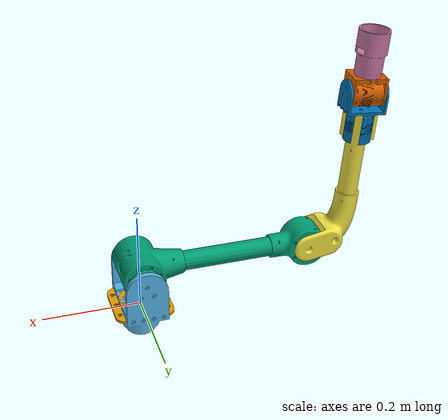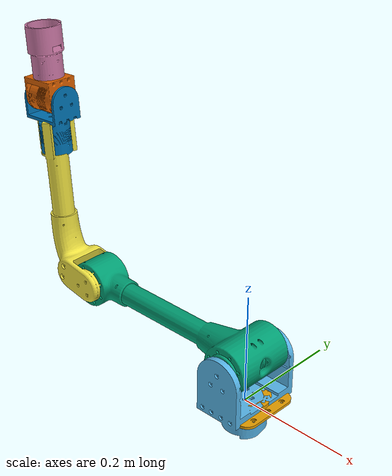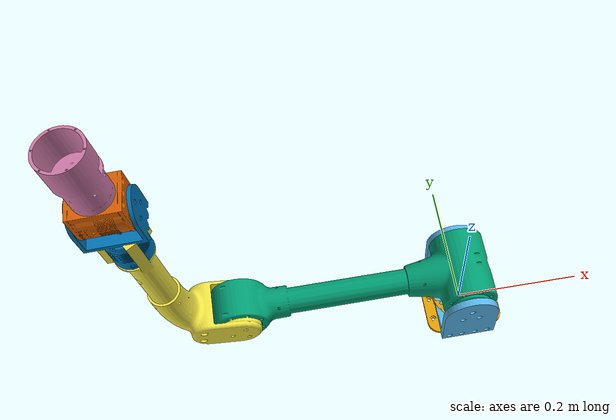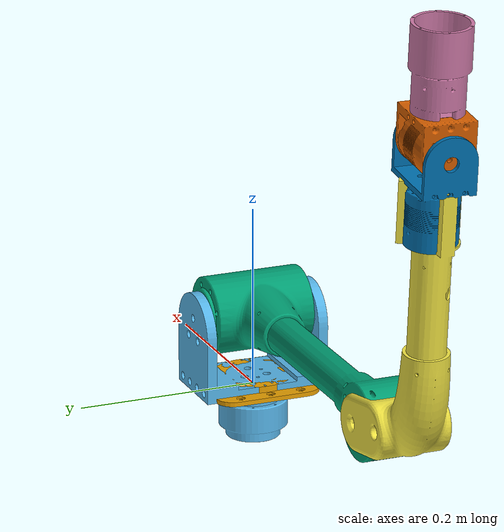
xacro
<?xml version="1.0"?>
<robot name="arm_only_clean" xmlns:xacro="http://www.ros.org/wiki/xacro">

  <link name="BASE_LINK">
    <inertial>
      <origin xyz="0 0 0.004385" rpy="0 -0 0" />
      <mass value="0.18833" />
      <inertia ixx="0.00023338" ixy="0" ixz="0" iyy="0.00023338" iyz="0" izz="0.00046295" />
    </inertial>
    <visual name="BASE_LINK_visual">
      <origin xyz="0 0 0" rpy="0 -0 0" />
      <geometry>
        <mesh filename="file://$(find arm_only_description)/meshes/BASE_LINK.STL" scale="1 1 1" />
      </geometry>
    </visual>
    <collision name="BASE_LINK_120x120x15p7_box">
      <origin xyz="0 0 0.00785" rpy="0 0 0" />
      <geometry>
        <box size="0.120 0.120 0.0157" />
      </geometry>
    </collision>
  </link>

  <link name="LINK1">
    <inertial>
      <origin xyz="-0.0006 0.0001 0.2736" rpy="0 -0 0" />
      <mass value="1.3734" />
      <inertia ixx="0.00487" ixy="0" ixz="0" iyy="0.00278" iyz="0" izz="0.00343" />
    </inertial>
    <visual name="LINK1_visual">
      <origin xyz="0 0 0" rpy="0 -0 0" />
      <geometry>
        <mesh filename="file://$(find arm_only_description)/meshes/LINK1.STL" scale="1 1 1" />
      </geometry>
    </visual>
    <collision name="LINK1_digeut_bottom_box">
      <origin xyz="0 0 0.02523" rpy="0 0 1.5708" />
      <geometry>
        <box size="0.141 0.0855 0.0175" />
      </geometry>
    </collision>
    <collision name="LINK1_digeut_right_box">
      <origin xyz="0 0.06525 0.081105" rpy="0 0 1.5708" />
      <geometry>
        <box size="0.013 0.087 0.09675" />
      </geometry>
    </collision>
    <collision name="LINK1_digeut_left_box">
      <origin xyz="0 -0.06525 0.081105" rpy="0 0 1.5708" />
      <geometry>
        <box size="0.013 0.087 0.09675" />
      </geometry>
    </collision>
  </link>

  <link name="LINK2">
    <inertial>
      <origin xyz="-0.05284 0.00053 0" rpy="0 -0 0" />
      <mass value="1.6197" />
      <inertia ixx="0.00225" ixy="-0.00014" ixz="0" iyy="0.02014" iyz="0" izz="0.02115" />
    </inertial>
    <visual name="LINK2_visual">
      <origin xyz="0 0 0" rpy="0 -0 0" />
      <geometry>
        <mesh filename="file://$(find arm_only_description)/meshes/LINK2.STL" scale="1 1 1" />
      </geometry>
    </visual>
    <collision name="LINK2_manual_cyl_01_y_axis">
      <origin xyz="0 0 0" rpy="1.5708 0 0" />
      <geometry>
        <cylinder radius="0.043" length="0.1105" />
      </geometry>
    </collision>
    <collision name="LINK2_manual_cyl_02_x_axis">
      <origin xyz="-0.155525 0 0" rpy="0 1.5708 0" />
      <geometry>
        <cylinder radius="0.022" length="0.31105" />
      </geometry>
    </collision>
    <collision name="LINK2_manual_cyl_03_y_axis">
      <origin xyz="-0.35042 0 -0.00031" rpy="1.5708 0 0" />
      <geometry>
        <cylinder radius="0.042" length="0.061" />
      </geometry>
    </collision>
  </link>

  <link name="LINK3">
    <inertial>
      <origin xyz="0.05161 -0.00115 0.03608" rpy="0 -0 0" />
      <mass value="1.0728" />
      <inertia ixx="0.00216" ixy="0.00018" ixz="0.00252" iyy="0.00962" iyz="0.00012" izz="0.00816" />
    </inertial>
    <visual name="LINK3_visual">
      <origin xyz="0 0 0" rpy="0 -0 0" />
      <geometry>
        <mesh filename="file://$(find arm_only_description)/meshes/LINK3.STL" scale="1 1 1" />
      </geometry>
    </visual>
    <collision name="LINK3_manual_cyl_01_x_axis">
      <origin xyz="0.151715 0.002 0.08328" rpy="0 1.5708 0" />
      <geometry>
        <cylinder radius="0.022" length="0.15233" />
      </geometry>
    </collision>
    <collision name="LINK3_manual_cyl_02_x_axis">
      <origin xyz="0.26088 0.002 0.08328" rpy="0 1.5708 0" />
      <geometry>
        <cylinder radius="0.0365" length="0.068" />
      </geometry>
    </collision>
    <collision name="LINK3_joint3_side_box_minus_y">
      <origin xyz="0.005 -0.03435 0.022" rpy="0 0 0" />
      <geometry>
        <box size="0.070 0.0085 0.105" />
      </geometry>
    </collision>
    <collision name="LINK3_joint3_side_box_plus_y">
      <origin xyz="0.005 0.03835 0.022" rpy="0 0 0" />
      <geometry>
        <box size="0.070 0.0085 0.105" />
      </geometry>
    </collision>
    <collision name="LINK3_joint3_slant_cyl_30deg">
      <origin xyz="0.0175 0.00175 0.062" rpy="0 1.0472 0" />
      <geometry>
        <cylinder radius="0.029" length="0.076" />
      </geometry>
    </collision>
    <collision name="LINK3_joint3_slant_cyl_5deg">
      <origin xyz="0.075 0.00175 0.082" rpy="0 1.4835 0" />
      <geometry>
        <cylinder radius="0.0275" length="0.080" />
      </geometry>
    </collision>
  </link>

  <link name="LINK4">
    <inertial>
      <origin xyz="0.01316 -0.00161 0.00017" rpy="0 -0 0" />
      <mass value="0.19955" />
      <inertia ixx="0.0002" ixy="-1e-05" ixz="0" iyy="0.0002" iyz="0" izz="0.00031" />
    </inertial>
    <visual name="LINK4_visual">
      <origin xyz="0 0 0" rpy="0 -0 0" />
      <geometry>
        <mesh filename="file://$(find arm_only_description)/meshes/LINK4.STL" scale="1 1 1" />
      </geometry>
    </visual>
    <collision name="LINK4_manual_box_01_center">
      <origin xyz="0.0093 0 0" rpy="0 0 0" />
      <geometry>
        <box size="0.008 0.071 0.058" />
      </geometry>
    </collision>
    <collision name="LINK4_manual_box_02_plus_y">
      <origin xyz="0.0375 0.0385 0" rpy="0 0 0" />
      <geometry>
        <box size="0.064 0.008 0.057" />
      </geometry>
    </collision>
    <collision name="LINK4_manual_box_03_minus_y">
      <origin xyz="0.0375 -0.0385 0" rpy="0 0 0" />
      <geometry>
        <box size="0.064 0.008 0.057" />
      </geometry>
    </collision>
  </link>

  <link name="LINK5">
    <inertial>
      <origin xyz="0.01923 0.0026 0.00017" rpy="0 -0 0" />
      <mass value="0.48674" />
      <inertia ixx="0.00041" ixy="-0.0002" ixz="0" iyy="0.00029" iyz="0" izz="0.00044" />
    </inertial>
    <visual name="LINK5_visual">
      <origin xyz="0 0 0" rpy="0 -0 0" />
      <geometry>
        <mesh filename="file://$(find arm_only_description)/meshes/LINK5.STL" scale="1 1 1" />
      </geometry>
    </visual>
    <collision name="LINK5_manual_cyl_01_y_axis">
      <origin xyz="0 0 0" rpy="1.5708 0 0" />
      <geometry>
        <cylinder radius="0.028" length="0.0585" />
      </geometry>
    </collision>
    <collision name="LINK5_manual_box_02_center_x">
      <origin xyz="0.032 0 0" rpy="0 0 0" />
      <geometry>
        <box size="0.0105 0.0585 0.0565" />
      </geometry>
    </collision>
    <collision name="LINK5_manual_box_03_minus_y">
      <origin xyz="0.0045 -0.0315 0" rpy="0 0 0" />
      <geometry>
        <box size="0.0655 0.0055 0.0565" />
      </geometry>
    </collision>
    <collision name="LINK5_manual_box_04_plus_y">
      <origin xyz="0.0045 0.0315 0" rpy="0 0 0" />
      <geometry>
        <box size="0.0655 0.0065 0.0565" />
      </geometry>
    </collision>
  </link>

  <link name="LINK6">
    <inertial>
      <origin xyz="0.01761 0.00048 0.00017" rpy="0 -0 0" />
      <mass value="0.39996" />
      <inertia ixx="0.00027" ixy="0" ixz="0" iyy="0.0003" iyz="0" izz="0.00029" />
    </inertial>
    <visual name="LINK6_visual">
      <origin xyz="0 0 0" rpy="0 -0 0" />
      <geometry>
        <mesh filename="file://$(find arm_only_description)/meshes/LINK6.STL" scale="1 1 1" />
      </geometry>
    </visual>
    <collision name="LINK6_manual_cyl_01_x_axis">
      <origin xyz="-0.02175 0 0" rpy="0 1.5708 0" />
      <geometry>
        <cylinder radius="0.0275" length="0.044" />
      </geometry>
    </collision>
    <collision name="LINK6_manual_cyl_02_x_axis">
      <origin xyz="0.025 0 0" rpy="0 1.5708 0" />
      <geometry>
        <cylinder radius="0.0315" length="0.0505" />
      </geometry>
    </collision>
  </link>

  <joint name="JOINT1" type="revolute">
    <origin xyz="0 0 0" rpy="0 -0 0" />
    <parent link="BASE_LINK" />
    <child link="LINK1" />
    <axis xyz="0 0 1" />
    <limit lower="-5.759587" upper="5.759587" effort="35" velocity="1.2" />
    <dynamics damping="2" friction="0.3" />
  </joint>

  <joint name="JOINT2" type="revolute">
    <origin xyz="0 0 0.086" rpy="0 -0 0" />
    <parent link="LINK1" />
    <child link="LINK2" />
    <axis xyz="0 -1 0" />
    <limit lower="-0.5" upper="0.104720" effort="35" velocity="1.2" />
    <dynamics damping="2" friction="0.3" />
  </joint>

  <joint name="JOINT3" type="revolute">
    <origin xyz="-0.35 -0.00225 0" rpy="0 -0 0" />
    <parent link="LINK2" />
    <child link="LINK3" />
    <axis xyz="0 1 0" />
    <limit lower="-3.228859" upper="-0.087266" effort="35" velocity="1.2" />
    <dynamics damping="2" friction="0.3" />
  </joint>

  <joint name="JOINT4" type="revolute">
    <origin xyz="0.28965 0.002 0.083467" rpy="-0.028519 0 0" />
    <parent link="LINK3" />
    <child link="LINK4" />
    <axis xyz="1 0 0" />
    <limit lower="-1.919862" upper="1.919862" effort="35" velocity="1.2" />
    <dynamics damping="2" friction="0.3" />
  </joint>

  <joint name="JOINT5" type="revolute">
    <origin xyz="0.041 0 0" rpy="0 -0 0" />
    <parent link="LINK4" />
    <child link="LINK5" />
    <axis xyz="0 1 0" />
    <limit lower="-0.523599" upper="1.570796" effort="35" velocity="1.2" />
    <dynamics damping="2" friction="0.3" />
  </joint>

  <joint name="JOINT6" type="revolute">
    <origin xyz="0.0805 0 0" rpy="0 -0 0" />
    <parent link="LINK5" />
    <child link="LINK6" />
    <axis xyz="-1 0 0" />
    <limit lower="-2.87729" upper="1.31150" effort="35" velocity="1.0" />
    <dynamics damping="2" friction="0.3" />
  </joint>

  <!-- ROS2_CONTROL_STANDARD_START -->

  <!--
    Standard MoveIt -> ros2_control -> gazebo_ros2_control setup.
    Initial values are the home pose manually adjusted in MoveIt Setup Assistant.
  -->
  <ros2_control name="GazeboSystem" type="system">
    <hardware>
      <plugin>gazebo_ros2_control/GazeboSystem</plugin>
    </hardware>

    <joint name="JOINT1">
      <command_interface name="position" />
      <state_interface name="position">
        <param name="initial_value">-0.0318</param>
      </state_interface>
      <state_interface name="velocity" />
      <state_interface name="effort" />
    </joint>

    <joint name="JOINT2">
      <command_interface name="position" />
      <state_interface name="position">
        <param name="initial_value">-0.2002</param>
      </state_interface>
      <state_interface name="velocity" />
      <state_interface name="effort" />
    </joint>

    <joint name="JOINT3">
      <command_interface name="position" />
      <state_interface name="position">
        <param name="initial_value">-0.2955</param>
      </state_interface>
      <state_interface name="velocity" />
      <state_interface name="effort" />
    </joint>

    <joint name="JOINT4">
      <command_interface name="position" />
      <state_interface name="position">
        <param name="initial_value">0.0106</param>
      </state_interface>
      <state_interface name="velocity" />
      <state_interface name="effort" />
    </joint>

    <joint name="JOINT5">
      <command_interface name="position" />
      <state_interface name="position">
        <param name="initial_value">0.0404</param>
      </state_interface>
      <state_interface name="velocity" />
      <state_interface name="effort" />
    </joint>

    <joint name="JOINT6">
      <command_interface name="position" />
      <state_interface name="position">
        <param name="initial_value">3.3295</param>
      </state_interface>
      <state_interface name="velocity" />
      <state_interface name="effort" />
    </joint>
  </ros2_control>

  <gazebo>
    <plugin filename="libgazebo_ros2_control.so" name="gazebo_ros2_control">
      <robot_param>robot_description</robot_param>
      <robot_param_node>robot_state_publisher</robot_param_node>
      <parameters>$(find arm_only_moveit_config)/config/ros2_controllers.yaml</parameters>
      <hold_joints>true</hold_joints>
    </plugin>
  </gazebo>

  <!-- ROS2_CONTROL_STANDARD_END -->
</robot>
